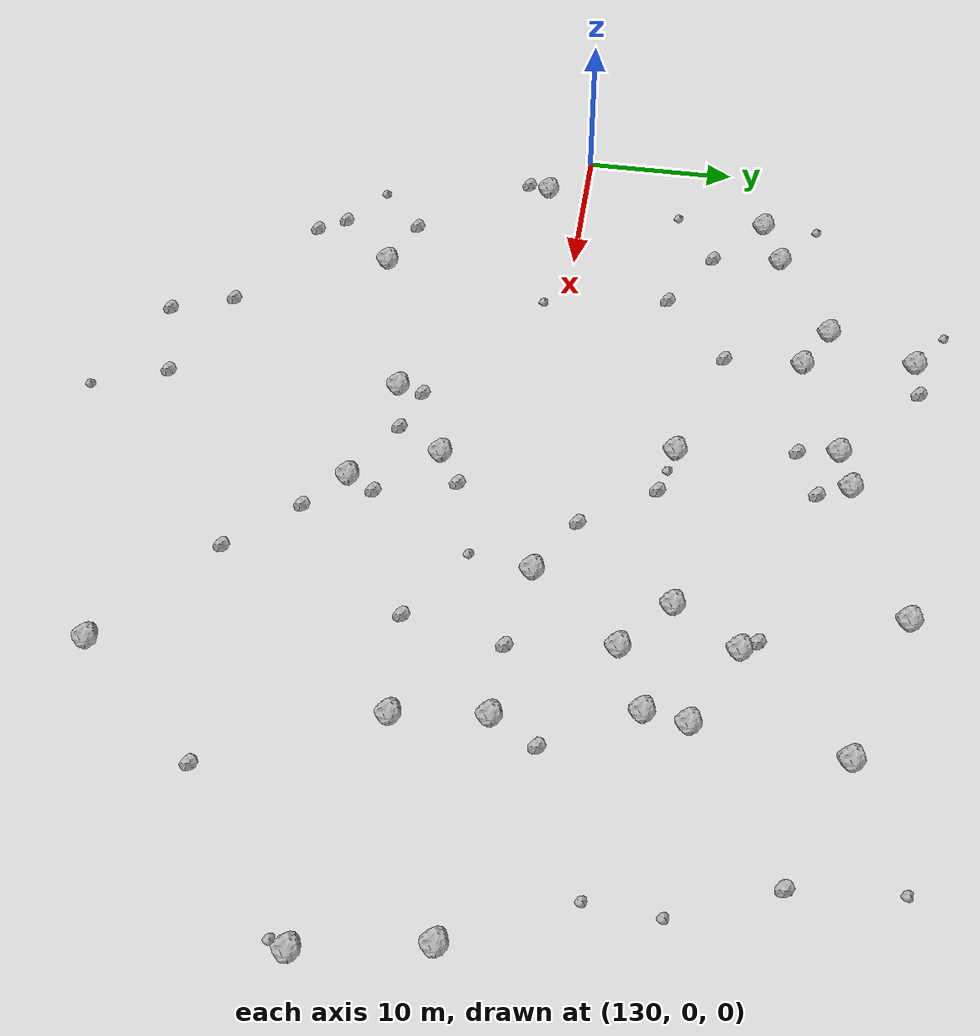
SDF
<sdf version="1.6">
 <world name="default">
  <include><uri>model://sun</uri></include>
  <model name="rock1_4_1">
   <include><uri>model://rock1</uri><pose>168.60605256249232 12.471195073709225 0.5 0 0 0</pose></include>
  </model>
  <model name="rock1_4_2">
   <include><uri>model://rock1</uri><pose>165.07384095194402 0.5930970008650469 0.5 0 0 0</pose></include>
  </model>
  <model name="rock1_4_3">
   <include><uri>model://rock1</uri><pose>173.05404940468958 7.560594102439801 0.5 0 0 0</pose></include>
  </model>
  <model name="rock1_4_4">
   <include><uri>model://rock1</uri><pose>169.3378115134843 5.89779284191885 0.5 0 0 0</pose></include>
  </model>
  <model name="rock1_4_5">
   <include><uri>model://rock1</uri><pose>160.046266568737 -11.174555875686089 0.5 0 0 0</pose></include>
  </model>
  <model name="rock1_4_6">
   <include><uri>model://rock1</uri><pose>152.78881959624334 -9.552336991733014 0.5 0 0 0</pose></include>
  </model>
  <model name="rock1_4_7">
   <include><uri>model://rock1</uri><pose>175.0750100997204 -5.668022896822201 0.5 0 0 0</pose></include>
  </model>
  <model name="rock1_4_8">
   <include><uri>model://rock1</uri><pose>144.46636313517018 17.038530558336753 0.5 0 0 0</pose></include>
  </model>
  <model name="rock1_4_9">
   <include><uri>model://rock1</uri><pose>187.84878220655324 -7.975251451929132 0.5 0 0 0</pose></include>
  </model>
  <model name="rock1_4_10">
   <include><uri>model://rock1</uri><pose>133.5706579133343 -2.5793198702826423 0.5 0 0 0</pose></include>
  </model>
  <model name="rock1_4_11">
   <include><uri>model://rock1</uri><pose>166.2618614412469 8.644059518343724 0.5 0 0 0</pose></include>
  </model>
  <model name="rock1_4_12">
   <include><uri>model://rock1</uri><pose>146.47511621107913 22.44985890925286 0.5 0 0 0</pose></include>
  </model>
  <model name="rock1_4_13">
   <include><uri>model://rock1</uri><pose>142.03537181085093 -12.397430982068546 0.5 0 0 0</pose></include>
  </model>
  <model name="rock1_4_14">
   <include><uri>model://rock1</uri><pose>172.91027916541987 -22.964245960373397 0.5 0 0 0</pose></include>
  </model>
  <model name="rock1_4_15">
   <include><uri>model://rock1</uri><pose>186.61265928741923 -1.1061486925299917 0.5 0 0 0</pose></include>
  </model>
  <model name="rock1_4_16">
   <include><uri>model://rock1</uri><pose>138.35667095533145 13.71780851896326 0.5 0 0 0</pose></include>
  </model>
  <model name="rock1_4_17">
   <include><uri>model://rock1</uri><pose>147.42855151658426 15.409072164243852 0.5 0 0 0</pose></include>
  </model>
  <model name="rock1_4_18">
   <include><uri>model://rock1</uri><pose>157.59195274434643 -6.017205172515453 0.5 0 0 0</pose></include>
  </model>
  <model name="rock1_4_19">
   <include><uri>model://rock1</uri><pose>174.27686204705225 18.505836725744032 0.5 0 0 0</pose></include>
  </model>
  <model name="rock1_4_20">
   <include><uri>model://rock1</uri><pose>165.45318700330668 21.660310298026246 0.5 0 0 0</pose></include>
  </model>
  <model name="rock1_4_21">
   <include><uri>model://rock1</uri><pose>135.15246795085866 12.496792650805638 0.5 0 0 0</pose></include>
  </model>
  <model name="rock1_4_22">
   <include><uri>model://rock1</uri><pose>154.1707548365869 17.748352493614263 0.5 0 0 0</pose></include>
  </model>
  <model name="rock1_4_23">
   <include><uri>model://rock1</uri><pose>174.41953859790658 -0.38170698286005944 0.5 0 0 0</pose></include>
  </model>
  <model name="rock1_4_24">
   <include><uri>model://rock1</uri><pose>173.3925303426852 10.033727295424193 0.5 0 0 0</pose></include>
  </model>
  <model name="rock1_4_25">
   <include><uri>model://rock1</uri><pose>155.43121482342278 7.970436591073636 0.5 0 0 0</pose></include>
  </model>
  <model name="rock1_4_26">
   <include><uri>model://rock1</uri><pose>156.72134842545466 18.43948605917879 0.5 0 0 0</pose></include>
  </model>
  <model name="rock2_4_0">
   <include><uri>model://rock2</uri><pose>170.06271396690042 -0.20612577164492762 0.3 0 0 0</pose></include>
  </model>
  <model name="rock2_4_1">
   <include><uri>model://rock2</uri><pose>142.9786249833666 6.569156282764027 0.3 0 0 0</pose></include>
  </model>
  <model name="rock2_4_2">
   <include><uri>model://rock2</uri><pose>167.94941022127034 13.44766237003352 0.3 0 0 0</pose></include>
  </model>
  <model name="rock2_4_3">
   <include><uri>model://rock2</uri><pose>148.2103888642599 -25.579040590107354 0.3 0 0 0</pose></include>
  </model>
  <model name="rock2_4_4">
   <include><uri>model://rock2</uri><pose>175.76158060015368 2.3597935184805223 0.3 0 0 0</pose></include>
  </model>
  <model name="rock2_4_5">
   <include><uri>model://rock2</uri><pose>146.78159842088195 -21.69507810236651 0.3 0 0 0</pose></include>
  </model>
  <model name="rock2_4_6">
   <include><uri>model://rock2</uri><pose>157.48419865522078 16.519964135113334 0.3 0 0 0</pose></include>
  </model>
  <model name="rock2_4_7">
   <include><uri>model://rock2</uri><pose>179.2211605692895 -15.281797795587016 0.3 0 0 0</pose></include>
  </model>
  <model name="rock2_4_8">
   <include><uri>model://rock2</uri><pose>159.5903055199185 -4.6053079929392595 0.3 0 0 0</pose></include>
  </model>
  <model name="rock2_4_9">
   <include><uri>model://rock2</uri><pose>133.18502129550703 -3.9601150413348236 0.3 0 0 0</pose></include>
  </model>
  <model name="rock2_4_10">
   <include><uri>model://rock2</uri><pose>160.84423767343412 -9.446408774736447 0.3 0 0 0</pose></include>
  </model>
  <model name="rock2_4_11">
   <include><uri>model://rock2</uri><pose>168.9644661189895 -6.1427739499193486 0.3 0 0 0</pose></include>
  </model>
  <model name="rock2_4_12">
   <include><uri>model://rock2</uri><pose>138.49843020809794 -15.963211027445737 0.3 0 0 0</pose></include>
  </model>
  <model name="rock2_4_13">
   <include><uri>model://rock2</uri><pose>148.83190714192006 22.696016020578625 0.3 0 0 0</pose></include>
  </model>
  <model name="rock2_4_14">
   <include><uri>model://rock2</uri><pose>165.87602378375993 -17.263164375754258 0.3 0 0 0</pose></include>
  </model>
  <model name="rock2_4_15">
   <include><uri>model://rock2</uri><pose>161.42641806126625 2.791743627050188 0.3 0 0 0</pose></include>
  </model>
  <model name="rock2_4_16">
   <include><uri>model://rock2</uri><pose>155.900453941917 -8.837405012602076 0.3 0 0 0</pose></include>
  </model>
  <model name="rock2_4_17">
   <include><uri>model://rock2</uri><pose>158.4738158045699 7.189166959011899 0.3 0 0 0</pose></include>
  </model>
  <model name="rock2_4_18">
   <include><uri>model://rock2</uri><pose>154.4490702035594 15.293812483385274 0.3 0 0 0</pose></include>
  </model>
  <model name="rock2_4_19">
   <include><uri>model://rock2</uri><pose>162.43273361782374 -13.366986928472034 0.3 0 0 0</pose></include>
  </model>
  <model name="rock2_4_20">
   <include><uri>model://rock2</uri><pose>153.0525294517981 -7.925251284523522 0.3 0 0 0</pose></include>
  </model>
  <model name="rock2_4_21">
   <include><uri>model://rock2</uri><pose>139.60362238376905 -17.721383516273598 0.3 0 0 0</pose></include>
  </model>
  <model name="rock2_4_22">
   <include><uri>model://rock2</uri><pose>153.4383159540273 -24.1496414340531 0.3 0 0 0</pose></include>
  </model>
  <model name="rock2_4_23">
   <include><uri>model://rock2</uri><pose>147.57422979458644 10.510367542669258 0.3 0 0 0</pose></include>
  </model>
  <model name="rock2_4_24">
   <include><uri>model://rock2</uri><pose>138.4096225644797 -11.00393883800053 0.3 0 0 0</pose></include>
  </model>
  <model name="rock2_4_25">
   <include><uri>model://rock2</uri><pose>181.54166812331474 15.328003181576982 0.3 0 0 0</pose></include>
  </model>
  <model name="rock2_4_26">
   <include><uri>model://rock2</uri><pose>138.70928500913115 9.283477380659022 0.3 0 0 0</pose></include>
  </model>
  <model name="rock3_4_0">
   <include><uri>model://rock3</uri><pose>156.855578139158 7.629579446476292 0.2 0 0 0</pose></include>
  </model>
  <model name="rock3_4_1">
   <include><uri>model://rock3</uri><pose>155.11873615487838 -28.76516925384938 0.2 0 0 0</pose></include>
  </model>
  <model name="rock3_4_2">
   <include><uri>model://rock3</uri><pose>183.52881350816006 5.5528211332322925 0.2 0 0 0</pose></include>
  </model>
  <model name="rock3_4_3">
   <include><uri>model://rock3</uri><pose>187.43128275591786 -8.973168885394028 0.2 0 0 0</pose></include>
  </model>
  <model name="rock3_4_4">
   <include><uri>model://rock3</uri><pose>135.38691899184533 -13.819292662283942 0.2 0 0 0</pose></include>
  </model>
  <model name="rock3_4_5">
   <include><uri>model://rock3</uri><pose>164.39840851858628 -3.171033818318648 0.2 0 0 0</pose></include>
  </model>
  <model name="rock3_4_6">
   <include><uri>model://rock3</uri><pose>183.77356524315087 9.553689301942576 0.2 0 0 0</pose></include>
  </model>
  <model name="rock3_4_7">
   <include><uri>model://rock3</uri><pose>143.76078082953532 24.39932349080876 0.2 0 0 0</pose></include>
  </model>
  <model name="rock3_4_8">
   <include><uri>model://rock3</uri><pose>135.05645949281393 16.134752747408314 0.2 0 0 0</pose></include>
  </model>
  <model name="rock3_4_9">
   <include><uri>model://rock3</uri><pose>181.00540744351943 21.24390968569974 0.2 0 0 0</pose></include>
  </model>
  <model name="rock3_4_10">
   <include><uri>model://rock3</uri><pose>144.15889438024783 -1.5292532436821098 0.2 0 0 0</pose></include>
  </model>
  <model name="rock3_4_11">
   <include><uri>model://rock3</uri><pose>134.962993427416 6.66563298565449 0.2 0 0 0</pose></include>
  </model>
 </world>
</sdf>
